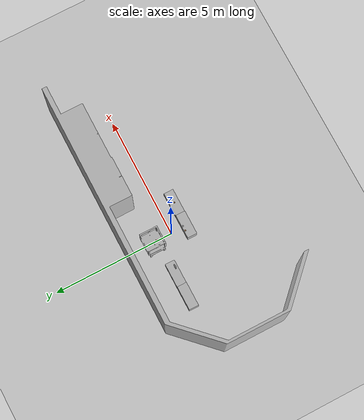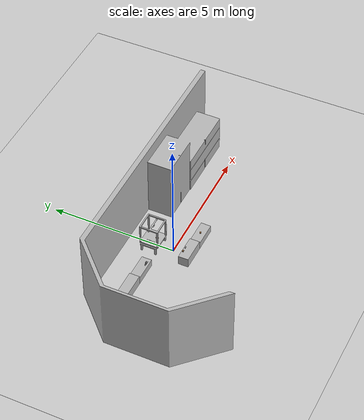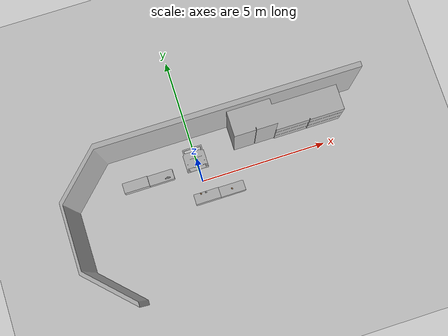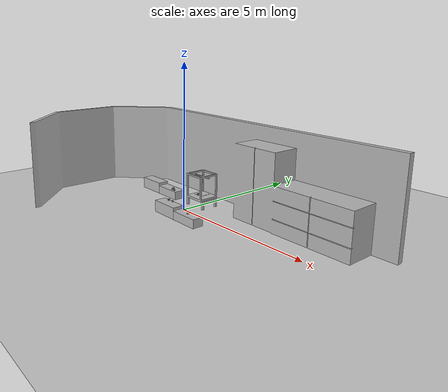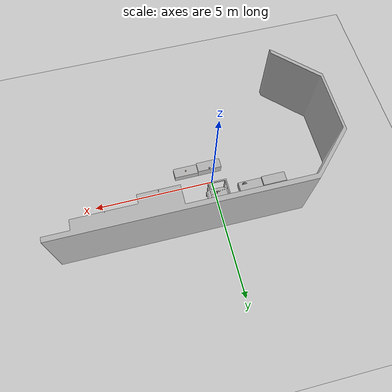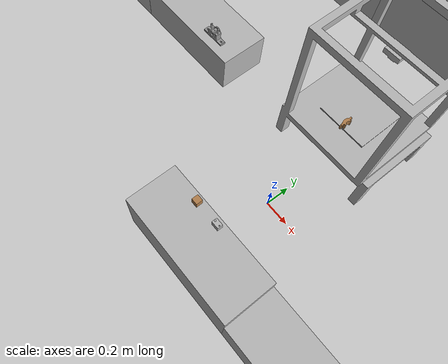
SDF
<?xml version="1.0" ?>

<sdf version="1.6">

  <world name="ur5_cubes">

    <gui>
      <camera name="user_camera">
        <pose>1.4 -2.3 1.4 0.0 0.25 1.9</pose>
      </camera>
    </gui>

    <gravity>0 0 0.0</gravity>

    <physics name="default_physics" default="0" type="ode">
      <max_step_size>0.001</max_step_size>
      <real_time_factor>1</real_time_factor>
      <real_time_update_rate>1000</real_time_update_rate>
    </physics>

    <scene>
      <ambient>0.4 0.4 0.4 1</ambient>
      <background>0.7 0.7 0.7 1</background>
      <shadows>1</shadows>
    </scene>

    <!-- Light Source -->
    <include>
      <uri>model://sun</uri>
    </include>

    <!-- A ground plane -->
    <include>
      <uri>model://ground_plane</uri>
      <pose>0 0 0 0 0 0</pose>
    </include>

    <!-- A gazebo links attacher for grasp Hack-->

   <!-- Pillow block -->
    <model name="pillow_block">
      <include>
        <uri>model://pillow_block</uri>
        <pose>-1.25 0.5 0.3 0 0 1.57</pose>
      </include>
    </model>

   <!-- aircraft -->
    <model name="aircraft">
      <include>
        <uri>model://aircraft</uri>
        <pose>-5 2 0 0 0 1.57</pose>
      </include>
    </model>

   <!-- 3D_printer -->
    <model name="3D_printer">
      <include>
        <uri>model://3D_printer</uri>
        <pose> -0.05 0.8 -0.15 0 0 1.57</pose>
      </include>
    </model>

   <!-- box -->
    <model name="Platform 1">
      <include>
        <uri>model://platform</uri>
        <pose> 0 -0.65 0 0 0 0</pose>
      </include>
    </model>

   <!-- box -->
    <model name="Platform 2">
      <include>
        <uri>model://platform</uri>
        <pose> -2.5 0.6 0 0 0 0</pose>
      </include>
    </model>

    <!-- cube -->
    <model name="cube 1">
      <include>
        <uri>model://cube</uri>
        <pose> -0.2 -0.5 0.4 0 0 0</pose>
      </include>
    </model>

    <!-- cube -->
    <model name="cube 2">
      <include>
        <uri>model://cube</uri>
        <pose> 1 -0.65 0.3 0 0 0</pose>
      </include>
    </model>

<!-- bolt holder -->
    <model name="bolt_holder">
      <include>
        <uri>model://Bolt_holder</uri>
        <pose> 0 -0.5 0.4 0 0 1.5707</pose>
      </include>
    </model>

<!-- bolt -->
    <model name="bolt">
      <include>
        <uri>model://Bolt</uri>
        <pose> -0.02 -0.5 0.42 0 0 0</pose>
      </include>
    </model>

   <!-- cap -->
<model name="cap">
<pose>0.0 0.65 0.41 0 0 1.57</pose>
<static>false</static>
<link name= "top">
<pose> 0.0 0.0 0.022  0 0 0 </pose>
    <inertial>
        <mass>0.0565</mass>

      <inertia>
           <ixx>2.3541666666666672e-05</ixx>
            <ixy>0</ixy>
            <ixz>0</ixz>
            <iyy>2.3541666666666672e-05</iyy>
            <iyz>0</iyz>
            <izz>2.3541666666666672e-05</izz>
          </inertia>
     </inertial>
<collision name= "top collision">
<pose> 0.0 0.0 0.0  0 0 0 </pose>
 <geometry>

    <mesh>
     <uri>model://cap/meshes/plummer_block_cap.obj</uri>
      <scale> 1 1 1 </scale>
   </mesh>

 </geometry>
 <surface>
    <contact>
         <poissons_ratio>0.347</poissons_ratio>
              <elastic_modulus>8.8e+09</elastic_modulus>
            <ode>
              <kp>100000</kp>
                <kd>1</kd>
                <max_vel>1.0</max_vel>
                <min_depth>0.001</min_depth>
            </ode>
      </contact>
          <friction>
            <ode>
              <mu>1.0</mu>
              <mu2>1.0</mu2>
            </ode>
          </friction>
  </surface>
</collision>

<visual name = "visual top">
<pose> 0.0 0.0 0.0  0 0 0 </pose>
  <geometry>
   <mesh>
     <uri>model://cap/meshes/plummer_block_cap.obj</uri>
      <scale> 1 1 1 </scale>
   </mesh>
</geometry>
<material>
          <script>
            <uri>file://media/materials/scripts/gazebo.material</uri>
            <name>Gazebo/Wood</name>
          </script>
        </material>
</visual>
</link>
  </model>

  </world>

</sdf>

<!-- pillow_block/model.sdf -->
<sdf version='1.6'>
  <model name="pillow_block">

<static>true</static>
<link name= "base">
<pose> 0.0 0.0 0.02 0 0 0 </pose>
   <inertial>
        <mass>0.265</mass>
    </inertial>
<collision name= "base collision">
 <geometry>
   <mesh>
     <uri>model://pillow_block/meshes/plummer_block_base.obj</uri>
      <scale> 1 1 1 </scale>
   </mesh>
</geometry>
<surface>
     <contact>
          <poissons_ratio>0.29</poissons_ratio>
            <elastic_modulus>200e+09</elastic_modulus>
            <ode>
              <kp>900000</kp>
              <kd>1</kd>
              <max_vel>1.0</max_vel>
              <min_depth>0.001</min_depth>
            </ode>
      </contact>
          <friction>
            <ode>
              <mu>1.0</mu>
              <mu2>1.0</mu2>
            </ode>
          </friction>
  </surface>

</collision>

<visual name = "visual base">
  <geometry>
   <mesh>
     <uri>model://pillow_block/meshes/plummer_block_base.obj</uri>
      <scale> 1 1 1 </scale>
   </mesh>
</geometry>
<material>
          <script>
            <uri>file://media/materials/scripts/gazebo.material</uri>
            <name>Gazebo/Grey</name>
          </script>
        </material>
</visual>
</link>

<link name="world_fix">
    <parent>world</parent>
    <child>pillow_block::base</child>
</link>

  </model>
</sdf>

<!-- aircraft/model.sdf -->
<sdf version='1.6'>
  <model name="aircraft">
<static>true</static>
<link name= "link">
<collision name= "aircraft collision">
 <geometry>
   <mesh>
     <uri>model://aircraft/meshes/aircraft.obj</uri>
      <scale> 1 1 1 </scale>
   </mesh>
</geometry>
</collision>

<visual name = "aircraft bearing">
  <geometry>
   <mesh>
     <uri>model://aircraft/meshes/aircraft.obj</uri>
      <scale> 1 1 1</scale>
   </mesh>
</geometry>
</visual>

</link>
  </model>
</sdf>

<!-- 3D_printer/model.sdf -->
<sdf version='1.6'>
  <model name="3D_printer">
<static>true</static>
<link name= "3D_printer">
<collision name= "3D_printer collision">

 <geometry>
   <mesh>
     <uri>model://3D_printer/meshes/3D_printer_with_base_simplified.obj</uri>
      <scale> 1 1 1</scale>
   </mesh>
</geometry>

</collision>

<visual name = "3D_printer bearing">
  <geometry>
   <mesh>
     <uri>model://3D_printer/meshes/3D_printer_with_base_simplified.obj</uri>
      <scale> 1 1 1</scale>
   </mesh>
</geometry>
</visual>
</link>
  </model>
</sdf>

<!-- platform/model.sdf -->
<sdf version="1.6">
  <model name="platform">
    <static>true</static>

    <link name="platform link 1">

      <pose>0 0.0 0.2 0 0 0</pose>

      <collision name="platform collision 1">
        <geometry>
          <box>
            <size>1 0.4 0.4</size>
          </box>
        </geometry>
      </collision>

      <visual name="platform visual 1">
        <geometry>
          <box>
            <size>1 0.4 0.4</size>
          </box>
        </geometry>

      </visual>

    </link>

    <link name="platform link 2">

      <pose>1.0 0.0 0.15 0 0 0</pose>

      <collision name="platform collision 2">
        <geometry>
          <box>
            <size>1 0.4 0.3</size>
          </box>
        </geometry>
      </collision>

      <visual name="platfrom visual 2">
        <geometry>
          <box>
            <size>1 0.4 0.3</size>
          </box>
        </geometry>

      </visual>

    </link>

  </model>
</sdf>

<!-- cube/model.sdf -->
<sdf version="1.6">

    <!-- Cubes -->
    <model name="cube1">
      <pose>0.0 -0.65 0.425 0 0 0</pose>
      <link name="link">
        <pose>0 0 0.025 0 0 0</pose>
        <inertial>
          <mass>0.0565</mass>
          <inertia>
            <ixx>2.3541666666666672e-05</ixx>
            <ixy>0</ixy>
            <ixz>0</ixz>
            <iyy>2.3541666666666672e-05</iyy>
            <iyz>0</iyz>
            <izz>2.3541666666666672e-05</izz>
          </inertia>
        </inertial>
        <collision name="collision">
          <geometry>
            <box>
              <size>0.05 0.05 0.05</size>
            </box>
          </geometry>
          <surface>
            <contact>
              <poissons_ratio>0.347</poissons_ratio>
              <elastic_modulus>8.8e+09</elastic_modulus>
              <ode>
                <kp>100000</kp>
                <kd>1</kd>
                <max_vel>1.0</max_vel>
                <min_depth>0.001</min_depth>
              </ode>
            </contact>
            <friction>
              <torsional>
                <coefficient>1.0</coefficient>
                <use_patch_radius>0</use_patch_radius>
                <surface_radius>0.05</surface_radius>
              </torsional>
            </friction>
          </surface>
        </collision>
        <visual name="visual">
          <geometry>
            <box>
              <size>0.05 0.05 0.05</size>
            </box>
          </geometry>
          <material>
            <script>
              <uri>file://media/materials/scripts/gazebo.material</uri>
              <name>Gazebo/Wood</name>
            </script>
          </material>
        </visual>
      </link>
    </model>
</sdf>

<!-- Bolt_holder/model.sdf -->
<sdf version='1.6'>
  <model name="Bolt_holder">
<static>true</static>
<link name= "bolt_holder_link">
<collision name= "bolt holder collision">
 <geometry>
   <mesh>
     <uri>model://Bolt_holder/meshes/Bolt_holder.obj</uri>
      <scale> 1 1 1 </scale>
   </mesh>
</geometry>

</collision>
<visual name = "visual bearing">
  <geometry>
   <mesh>
     <uri>model://Bolt_holder/meshes/Bolt_holder.obj</uri>
      <scale> 1 1 1 </scale>
   </mesh>
</geometry>
</visual>
</link>
  </model>
</sdf>

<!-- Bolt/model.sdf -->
<sdf version='1.6'>
  <model name="Bolt">
<static>false</static>
<link name= "bolt_link">
        <inertial>
           <pose>0.0 0.0 0.023845784 0 0 0</pose>
<!-- mass = 0.0132733013 -->
          <mass>0.0332733013</mass>
          <inertia>
            <ixx>1.61552e-06</ixx>
            <ixy>0</ixy>
            <ixz>-2.1381e-11</ixz>
            <iyy>1.61552e-06</iyy>
            <iyz>0</iyz>
            <izz>1.80747e-07</izz>
          </inertia>
        </inertial>
<collision name= "bolt collision">
 <geometry>
   <mesh>
     <uri>model://Bolt/meshes/Bolt.obj</uri>
      <scale> 1 1 1 </scale>
   </mesh>
</geometry>
 <surface>
    <contact>
         <poissons_ratio>0.347</poissons_ratio>
              <elastic_modulus>8.8e+09</elastic_modulus>
            <ode>
              <kp>100000</kp>
                <kd>1</kd>
                <max_vel>0.5</max_vel>
                <min_depth>0.001</min_depth>
            </ode>
      </contact>
          <friction>
            <ode>
              <mu>1.0</mu>
              <mu2>1.0</mu2>
            </ode>
          </friction>
  </surface>
</collision>
<visual name = "visual bearing">
  <geometry>
   <mesh>
     <uri>model://Bolt/meshes/Bolt.obj</uri>
      <scale> 1 1 1 </scale>
   </mesh>
</geometry>
</visual>
</link>
  </model>
</sdf>
